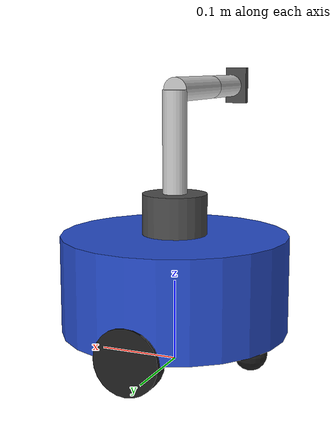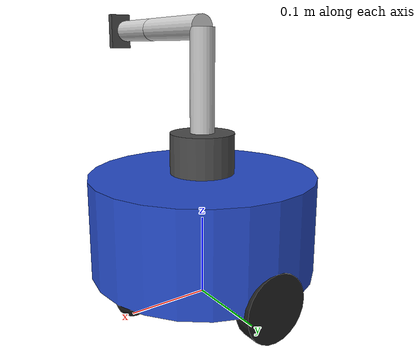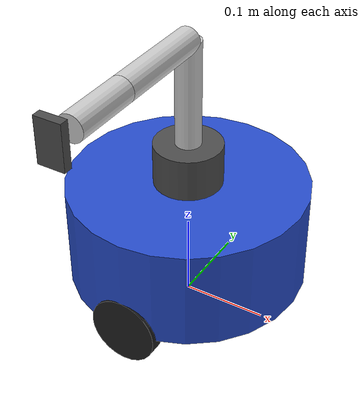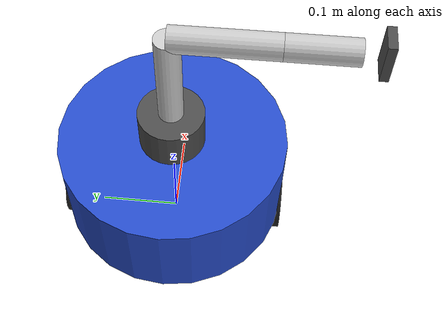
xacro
<?xml version="1.0"?>
<robot name="test_robot" xmlns:xacro="http://www.ros.org/wiki/xacro">
    <xacro:include filename="common/inertia_macros.xacro" />
    <xacro:include filename="base/mobile_base.xacro" />
    <xacro:include filename="base/mobile_base_gazebo.xacro" />
    <xacro:include filename="arm/simple_arm.xacro" />
    <xacro:include filename="arm/simple_arm_gazebo.xacro" />

    <xacro:mobile_base />
    <xacro:mobile_base_gazebo_plugin />
    <xacro:simple_arm prefix="arm_" />
    <xacro:simple_arm_gazebo_plugin prefix="arm_" />
</robot>

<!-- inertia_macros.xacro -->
<robot xmlns:xacro="http://www.ros.org/wiki/xacro">

    <xacro:macro name="cylinder_inertia" params="m r h">
        <inertial>
            <origin xyz="0 0 0" rpy="0 0 0" />
            <mass value="${m}" />
            <inertia ixx="${(m/12) * (3*r*r + h*h)}" ixy="0" ixz="0"
                     iyy="${(m/12) * (3*r*r + h*h)}" iyz="0"
                     izz="${(m/2) * (r*r)}" />
        </inertial>
    </xacro:macro>

    <xacro:macro name="sphere_inertia" params="m r">
        <inertial>
            <origin xyz="0 0 0" rpy="0 0 0" />
            <mass value="${m}" />
            <inertia ixx="${(2/5) * m * r * r}" ixy="0" ixz="0"
                     iyy="${(2/5) * m * r * r}" iyz="0"
                     izz="${(2/5) * m * r * r}" />
        </inertial>
    </xacro:macro>

    <!-- 添加长方体惯性宏 -->
    <xacro:macro name="box_inertia" params="m x y z">
        <inertial>
            <origin xyz="0 0 0" rpy="0 0 0" />
            <mass value="${m}" />
            <inertia ixx="${(m/12) * (y*y + z*z)}" ixy="0" ixz="0"
                     iyy="${(m/12) * (x*x + z*z)}" iyz="0"
                     izz="${(m/12) * (x*x + y*y)}" />
        </inertial>
    </xacro:macro>

</robot>

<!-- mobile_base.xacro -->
<robot xmlns:xacro="http://www.ros.org/wiki/xacro">

    <xacro:macro name="mobile_base">

        <xacro:property name="chassis_radius" value="0.14" />
        <xacro:property name="chassis_height" value="0.12" />
        <xacro:property name="chassis_mass" value="10.0" />
        <xacro:property name="wheel_radius" value="0.04" />
        <xacro:property name="wheel_width" value="0.02" />
        <xacro:property name="wheel_offset_y" value="0.13" />
        <xacro:property name="caster_radius" value="0.02" />
        <xacro:property name="caster_offset_x" value="0.10" />

        <link name="base_footprint" >
            <inertial>
                <mass value="0.001"/>
                <origin xyz="0 0 0"/>
                <inertia ixx="0.0001" ixy="0.0" ixz="0.0"
                         iyy="0.0001" iyz="0.0"
                         izz="0.0001"/>
            </inertial>
        </link>

        <joint name="base_joint" type="fixed">
            <parent link="base_footprint" />
            <child link="base_link" />
            <origin xyz="0 0 ${wheel_radius}" rpy="0 0 0" />
        </joint>

        <link name="base_link">
            <visual>
                <origin xyz="0 0 ${chassis_height/2}" rpy="0 0 0" />
                <geometry>
                    <cylinder radius="${chassis_radius}" length="${chassis_height}" />
                </geometry>
                <material name="blue" />
            </visual>
            <collision>
                <origin xyz="0 0 ${chassis_height/2}" rpy="0 0 0" />
                <geometry>
                    <cylinder radius="${chassis_radius}" length="${chassis_height}" />
                </geometry>
            </collision>
            <xacro:cylinder_inertia m="${chassis_mass}" r="${chassis_radius}" h="${chassis_height}" />
        </link>

        <xacro:macro name="wheel" params="prefix y_reflect">
            <link name="${prefix}_wheel_link">
                <visual>
                    <origin xyz="0 0 0" rpy="${pi/2} 0 0" />
                    <geometry>
                        <cylinder radius="${wheel_radius}" length="${wheel_width}" />
                    </geometry>
                    <material name="black" />
                </visual>
                <collision>
                    <origin xyz="0 0 0" rpy="${pi/2} 0 0" />
                    <geometry>
                        <cylinder radius="${wheel_radius}" length="${wheel_width}" />
                    </geometry>
                </collision>
                <xacro:cylinder_inertia m="0.5" r="${wheel_radius}" h="${wheel_width}" />
            </link>

            <joint name="${prefix}_wheel_joint" type="continuous">
                <parent link="base_link" />
                <child link="${prefix}_wheel_link" />
                <origin xyz="0 ${y_reflect * wheel_offset_y} 0" rpy="0 0 0" />
                <axis xyz="0 1 0" />
            </joint>

            <gazebo reference="${prefix}_wheel_link">
                <mu1>2.0</mu1>
                <mu2>2.0</mu2>
                <kp>1000000.0</kp>
                <kd>100.0</kd>
                <material>Gazebo/Black</material>
            </gazebo>

        </xacro:macro>

        <xacro:wheel prefix="left" y_reflect="1" />
        <xacro:wheel prefix="right" y_reflect="-1" />

        <xacro:macro name="caster_wheel" params="prefix x_reflect">
            <link name="${prefix}_caster_wheel">
                <visual>
                    <geometry>
                        <sphere radius="${caster_radius}" />
                    </geometry>
                    <material name="black" />
                </visual>
                <collision>
                    <geometry>
                        <sphere radius="${caster_radius}" />
                    </geometry>
                </collision>
                <xacro:sphere_inertia m="0.1" r="${caster_radius}" />
            </link>

            <joint name="${prefix}_caster_joint" type="fixed">
                <parent link="base_link" />
                <child link="${prefix}_caster_wheel" />
                <origin xyz="${x_reflect * caster_offset_x} 0 ${caster_radius - wheel_radius}" rpy="0 0 0" />
            </joint>

            <gazebo reference="${prefix}_caster_wheel">
                <mu1>0.001</mu1>
                <mu2>0.001</mu2>
                <material>Gazebo/Black</material>
            </gazebo>
        </xacro:macro>

        <xacro:caster_wheel prefix="front" x_reflect="1" />
        <xacro:caster_wheel prefix="back" x_reflect="-1" />

    </xacro:macro>
</robot>

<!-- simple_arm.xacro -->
<robot xmlns:xacro="http://www.ros.org/wiki/xacro">

  <xacro:macro name="simple_arm" params="prefix:='arm_'">

    <!-- 机械臂参数定义 - 与底盘风格一致 -->
    <xacro:property name="base_radius" value="0.04" />
    <xacro:property name="base_height" value="0.05" />
    <xacro:property name="base_mass" value="0.5" />
    <xacro:property name="link1_length" value="0.15" />
    <xacro:property name="link2_length" value="0.12" />
    <xacro:property name="link3_length" value="0.08" />
    <xacro:property name="link_radius" value="0.015" />
    <xacro:property name="link1_mass" value="0.3" />
    <xacro:property name="link2_mass" value="0.2" />
    <xacro:property name="link3_mass" value="0.1" />
    <xacro:property name="gripper_length" value="0.05" />
    <xacro:property name="gripper_width" value="0.03" />
    <xacro:property name="gripper_mass" value="0.05" />

    <!-- 机械臂材质定义 -->
    <material name="arm_silver">
      <color rgba="0.8 0.8 0.8 1.0"/>
    </material>

    <material name="arm_dark_gray">
      <color rgba="0.3 0.3 0.3 1.0"/>
    </material>

    <!-- 机械臂基座连接到底盘 - 安装在底盘顶部中央 -->
    <joint name="${prefix}base_joint" type="fixed">
      <parent link="base_link" />
      <child link="${prefix}base_link" />
      <origin xyz="0.0 0.0 ${0.12}" rpy="0 0 0" />
    </joint>

    <!-- 1. 机械臂基座 -->
    <link name="${prefix}base_link">
      <visual>
        <origin xyz="0 0 ${base_height/2}" rpy="0 0 0" />
        <geometry>
          <cylinder radius="${base_radius}" length="${base_height}" />
        </geometry>
        <material name="arm_dark_gray" />
      </visual>
      <collision>
        <origin xyz="0 0 ${base_height/2}" rpy="0 0 0" />
        <geometry>
          <cylinder radius="${base_radius}" length="${base_height}" />
        </geometry>
      </collision>
      <xacro:cylinder_inertia m="${base_mass}" r="${base_radius}" h="${base_height}" />
    </link>

    <!-- 2. 第一个旋转关节 (肩部旋转) -->
    <joint name="${prefix}shoulder_pan_joint" type="revolute">
      <parent link="${prefix}base_link" />
      <child link="${prefix}link1" />
      <origin xyz="0 0 ${base_height/2}" rpy="0 0 0" />
      <axis xyz="0 0 1" />
      <limit lower="${-pi}" upper="${pi}" effort="10" velocity="1.0" />
    </joint>

    <link name="${prefix}link1">
      <visual>
        <origin xyz="0 0 ${link1_length/2}" rpy="0 0 0" />
        <geometry>
          <cylinder radius="${link_radius}" length="${link1_length}" />
        </geometry>
        <material name="arm_silver" />
      </visual>
      <collision>
        <origin xyz="0 0 ${link1_length/2}" rpy="0 0 0" />
        <geometry>
          <cylinder radius="${link_radius}" length="${link1_length}" />
        </geometry>
      </collision>
      <xacro:cylinder_inertia m="${link1_mass}" r="${link_radius}" h="${link1_length}" />
    </link>

    <!-- 3. 第二个俯仰关节 (肩部俯仰) -->
    <joint name="${prefix}shoulder_pitch_joint" type="revolute">
      <parent link="${prefix}link1" />
      <child link="${prefix}link2" />
      <origin xyz="0 0 ${link1_length}" rpy="${pi/2} 0 0" />
      <axis xyz="0 1 0" />
      <limit lower="${-pi/2}" upper="${pi/2}" effort="8" velocity="1.0" />
    </joint>

    <link name="${prefix}link2">
      <visual>
        <origin xyz="0 0 ${link2_length/2}" rpy="0 0 0" />
        <geometry>
          <cylinder radius="${link_radius}" length="${link2_length}" />
        </geometry>
        <material name="arm_silver" />
      </visual>
      <collision>
        <origin xyz="0 0 ${link2_length/2}" rpy="0 0 0" />
        <geometry>
          <cylinder radius="${link_radius}" length="${link2_length}" />
        </geometry>
      </collision>
      <xacro:cylinder_inertia m="${link2_mass}" r="${link_radius}" h="${link2_length}" />
    </link>

    <!-- 4. 第三个俯仰关节 (肘部俯仰) -->
    <joint name="${prefix}elbow_pitch_joint" type="revolute">
      <parent link="${prefix}link2" />
      <child link="${prefix}link3" />
      <origin xyz="0 0 ${link2_length}" rpy="0 0 0" />
      <axis xyz="0 1 0" />
      <limit lower="${-pi/2}" upper="${pi/2}" effort="5" velocity="1.0" />
    </joint>

    <link name="${prefix}link3">
      <visual>
        <origin xyz="0 0 ${link3_length/2}" rpy="0 0 0" />
        <geometry>
          <cylinder radius="${link_radius}" length="${link3_length}" />
        </geometry>
        <material name="arm_silver" />
      </visual>
      <collision>
        <origin xyz="0 0 ${link3_length/2}" rpy="0 0 0" />
        <geometry>
          <cylinder radius="${link_radius}" length="${link3_length}" />
        </geometry>
      </collision>
      <xacro:cylinder_inertia m="${link3_mass}" r="${link_radius}" h="${link3_length}" />
    </link>

    <!-- 5. 末端执行器 (简单的夹爪) -->
    <joint name="${prefix}gripper_fixed_joint" type="fixed">
      <parent link="${prefix}link3" />
      <child link="${prefix}gripper_link" />
      <origin xyz="0 0 ${link3_length}" rpy="0 0 0" />
    </joint>

    <link name="${prefix}gripper_link">
      <visual>
        <origin xyz="0 0 ${gripper_length/2}" rpy="${pi/2} 0 0" />
        <geometry>
          <box size="${gripper_width} 0.01 ${gripper_length}" />
        </geometry>
        <material name="arm_dark_gray" />
      </visual>
      <collision>
        <origin xyz="0 0 ${gripper_length/2}" rpy="${pi/2} 0 0" />
        <geometry>
          <box size="${gripper_width} 0.01 ${gripper_length}" />
        </geometry>
      </collision>
      <!-- 使用圆柱体惯性近似长方体夹爪 -->
      <xacro:cylinder_inertia m="${gripper_mass}" r="${gripper_width/2}" h="0.01" />
    </link>

  </xacro:macro>

</robot>
